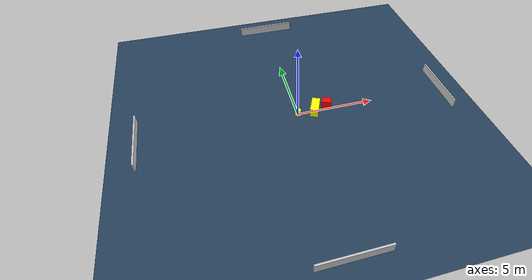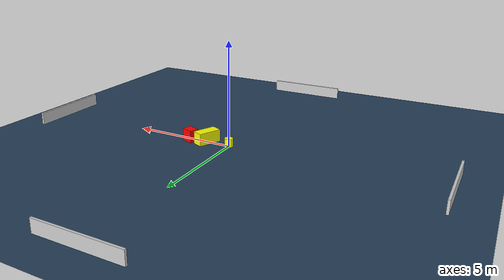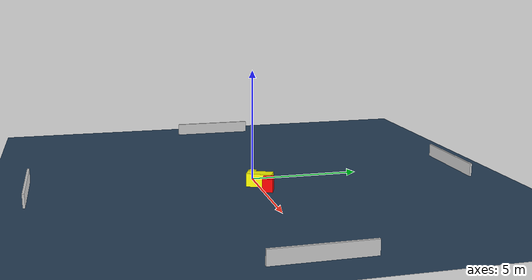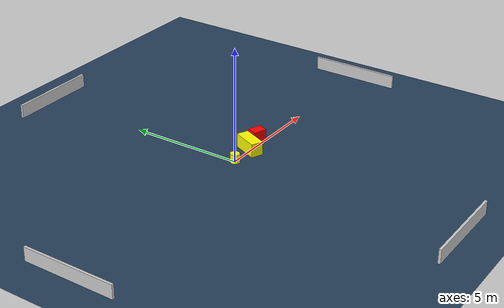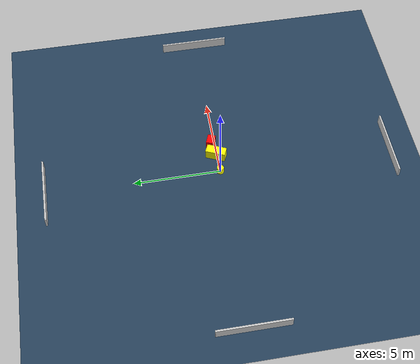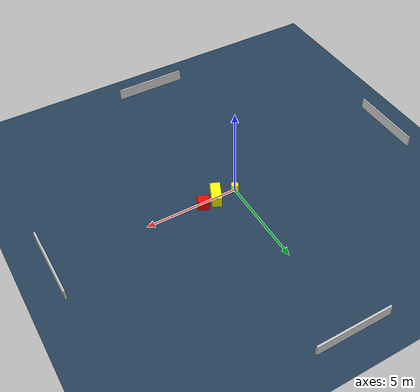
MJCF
<?xml version="1.0" ?>
<mujoco model="generated_environment">
  <option timestep="0.01" integrator="RK4" cone="elliptic"/>
  <default>
    <geom density="1"/>
  </default>
  <asset>
    <texture builtin="gradient" height="3072" name="skybox" rgb1="0.3 0.5 0.7" rgb2="0 0 0" type="skybox" width="512"/>
    <texture builtin="checker" height="300" name="groundplane" rgb1="0.2 0.3 0.4" rgb2="0.1 0.2 0.3" type="2d" width="300"/>
    <material name="groundplane" reflectance="0.2" texrepeat="5 5" texture="groundplane"/>
  </asset>
  <worldbody>
    <light dir="0 0 -1" directional="true" pos="0 0 1.5"/>
    <geom condim="3" friction="0.5 0.005 0.001" material="groundplane" name="floor" pos="0 0 0" size="0 0 0.05" type="plane"/>
    <body name="walls">
      <geom name="wall_1" condim="4" pos="-10.0 0.0 0.3" rgba="0.800000011920929 0.800000011920929 0.800000011920929 1.0" size="0.05 2.0 0.3" type="box"/>
      <geom name="wall_2" condim="4" pos="10.0 0.0 0.3" rgba="0.800000011920929 0.800000011920929 0.800000011920929 1.0" size="0.05 2.0 0.3" type="box"/>
      <geom name="wall_3" condim="4" pos="0.0 -10.0 0.3" rgba="0.800000011920929 0.800000011920929 0.800000011920929 1.0" size="2.0 0.05 0.3" type="box"/>
      <geom name="wall_4" condim="4" pos="0.0 10.0 0.3" rgba="0.800000011920929 0.800000011920929 0.800000011920929 1.0" size="2.0 0.05 0.3" type="box"/>
    </body>
    <body name="robot">
      <joint name="joint_x" type="slide" pos="0 0 0" axis="1 0 0"/>
      <joint name="joint_y" type="slide" pos="0 0 0" axis="0 1 0"/>
      <geom name="robot" type="cylinder" pos="0.0 0.0 0.2" size="0.2 0.2 0.0" mass="5.0" friction="1.0 0.005 0.0001" condim="4" rgba="1.0 1.0 0.0 1.0"/>
    </body>
    <body name="obstacle_1_movable">
      <geom name="obstacle_1_movable" condim="4" pos="1.157593563000742 0.05489982002533105 0.3" euler="0 0 66.08549216952022" friction="0.0 0.005 0.001" rgba="1.0 1.0 0.0 1.0" size="0.5738211964808635 0.2638172610673201 0.3" type="box" mass="0.1"/>
      <joint type="free"/>
    </body>
    <body name="obstacle_2_static">
      <geom name="obstacle_2_static" condim="4" pos="1.9816849621258927 0.22283996840178028 0.3" euler="0 0 68.75313047871916" friction="0.0 0.005 0.001" rgba="1.0 0.0 0.0 1.0" size="0.22992586727774603 0.3010678832894848 0.3" type="box"/>
    </body>
  </worldbody>
  <actuator>
    <motor name="actuator_x" joint="joint_x" gear="1" ctrlrange="-1 1"/>
    <motor name="actuator_y" joint="joint_y" gear="1" ctrlrange="-1 1"/>
  </actuator>
</mujoco>
